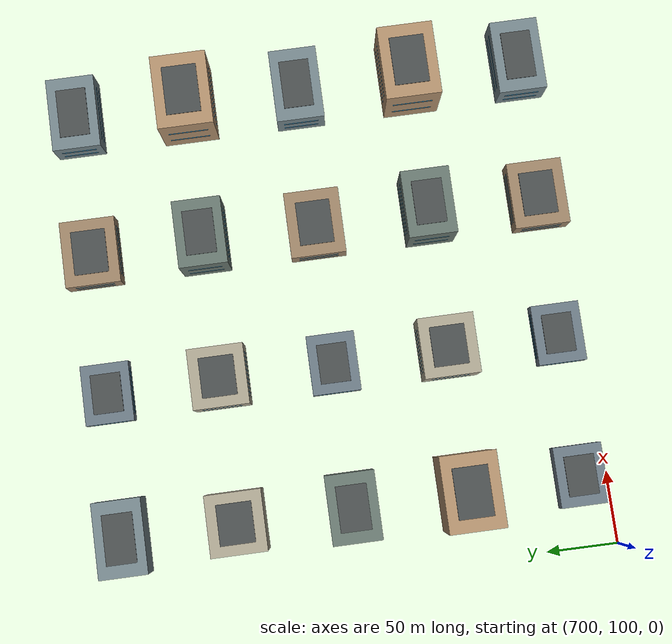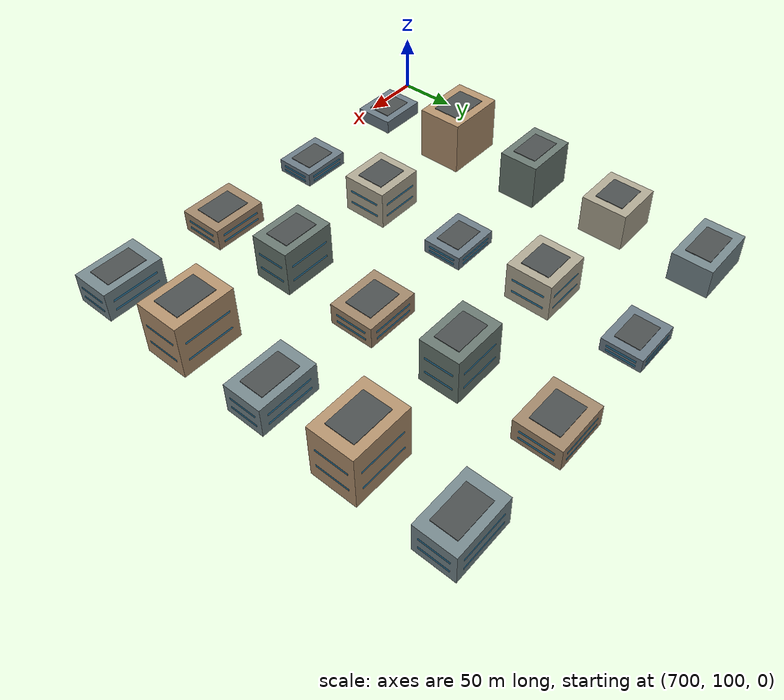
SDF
<sdf version="1.9">
 <world name="smart_city">
  <model name="chennai_block_066">
   <static>true</static>
   <pose>750 120 0 0 0 0</pose>
   <link name="building">
    <collision name="structure">
     <pose>0 0 6.0 0 0 0</pose>
     <geometry><box><size>42 34 12</size></box></geometry>
    </collision>
    <visual name="facade">
     <pose>0 0 6.0 0 0 0</pose>
     <geometry><box><size>42 34 12</size></box></geometry>
     <material><ambient>0.42 0.48 0.52 1</ambient><diffuse>0.42 0.48 0.52 1</diffuse></material>
    </visual>
    <visual name="roof">
     <pose>0 0 12.3 0 0 0</pose>
     <geometry><box><size>27.7 21.1 0.6</size></box></geometry>
     <material><ambient>0.29 0.31 0.31 1</ambient><diffuse>0.29 0.31 0.31 1</diffuse></material>
    </visual>
   </link>
  </model>
  <model name="chennai_block_077">
   <static>true</static>
   <pose>750 200 0 0 0 0</pose>
   <link name="building">
    <collision name="structure">
     <pose>0 0 23.5 0 0 0</pose>
     <geometry><box><size>52 39 47</size></box></geometry>
    </collision>
    <visual name="facade">
     <pose>0 0 23.5 0 0 0</pose>
     <geometry><box><size>52 39 47</size></box></geometry>
     <material><ambient>0.70 0.57 0.43 1</ambient><diffuse>0.70 0.57 0.43 1</diffuse></material>
    </visual>
    <visual name="roof">
     <pose>0 0 47.3 0 0 0</pose>
     <geometry><box><size>34.3 24.2 0.6</size></box></geometry>
     <material><ambient>0.29 0.31 0.31 1</ambient><diffuse>0.29 0.31 0.31 1</diffuse></material>
    </visual>
   </link>
  </model>
  <model name="chennai_block_088">
   <static>true</static>
   <pose>750 280 0 0 0 0</pose>
   <link name="building">
    <collision name="structure">
     <pose>0 0 20.0 0 0 0</pose>
     <geometry><box><size>47 34 40</size></box></geometry>
    </collision>
    <visual name="facade">
     <pose>0 0 20.0 0 0 0</pose>
     <geometry><box><size>47 34 40</size></box></geometry>
     <material><ambient>0.41 0.47 0.44 1</ambient><diffuse>0.41 0.47 0.44 1</diffuse></material>
    </visual>
    <visual name="roof">
     <pose>0 0 40.3 0 0 0</pose>
     <geometry><box><size>31.0 21.1 0.6</size></box></geometry>
     <material><ambient>0.29 0.31 0.31 1</ambient><diffuse>0.29 0.31 0.31 1</diffuse></material>
    </visual>
   </link>
  </model>
  <model name="chennai_block_099">
   <static>true</static>
   <pose>750 360 0 0 0 0</pose>
   <link name="building">
    <collision name="structure">
     <pose>0 0 16.5 0 0 0</pose>
     <geometry><box><size>42 39 33</size></box></geometry>
    </collision>
    <visual name="facade">
     <pose>0 0 16.5 0 0 0</pose>
     <geometry><box><size>42 39 33</size></box></geometry>
     <material><ambient>0.68 0.65 0.57 1</ambient><diffuse>0.68 0.65 0.57 1</diffuse></material>
    </visual>
    <visual name="roof">
     <pose>0 0 33.3 0 0 0</pose>
     <geometry><box><size>27.7 24.2 0.6</size></box></geometry>
     <material><ambient>0.29 0.31 0.31 1</ambient><diffuse>0.29 0.31 0.31 1</diffuse></material>
    </visual>
   </link>
  </model>
  <model name="chennai_block_110">
   <static>true</static>
   <pose>750 440 0 0 0 0</pose>
   <link name="building">
    <collision name="structure">
     <pose>0 0 13.0 0 0 0</pose>
     <geometry><box><size>52 34 26</size></box></geometry>
    </collision>
    <visual name="facade">
     <pose>0 0 13.0 0 0 0</pose>
     <geometry><box><size>52 34 26</size></box></geometry>
     <material><ambient>0.46 0.53 0.55 1</ambient><diffuse>0.46 0.53 0.55 1</diffuse></material>
    </visual>
    <visual name="roof">
     <pose>0 0 26.3 0 0 0</pose>
     <geometry><box><size>34.3 21.1 0.6</size></box></geometry>
     <material><ambient>0.29 0.31 0.31 1</ambient><diffuse>0.29 0.31 0.31 1</diffuse></material>
    </visual>
   </link>
  </model>
  <model name="chennai_block_126">
   <static>true</static>
   <pose>850 120 0 0 0 0</pose>
   <link name="building">
    <collision name="structure">
     <pose>0 0 6.0 0 0 0</pose>
     <geometry><box><size>42 34 12</size></box></geometry>
    </collision>
    <visual name="facade">
     <pose>0 0 6.0 0 0 0</pose>
     <geometry><box><size>42 34 12</size></box></geometry>
     <material><ambient>0.42 0.48 0.52 1</ambient><diffuse>0.42 0.48 0.52 1</diffuse></material>
    </visual>
    <visual name="window_band_y_3_-1">
     <pose>0 -17.04 3.36 0 0 0</pose>
     <geometry><box><size>31.9 0.06 1.8</size></box></geometry>
     <material><ambient>0.20 0.52 0.68 1</ambient><diffuse>0.20 0.52 0.68 1</diffuse></material>
    </visual>
    <visual name="window_band_x_3_-1">
     <pose>-21.04 0 3.36 0 0 0</pose>
     <geometry><box><size>0.06 24.5 1.8</size></box></geometry>
     <material><ambient>0.20 0.52 0.68 1</ambient><diffuse>0.20 0.52 0.68 1</diffuse></material>
    </visual>
    <visual name="window_band_y_3_1">
     <pose>0 17.04 3.36 0 0 0</pose>
     <geometry><box><size>31.9 0.06 1.8</size></box></geometry>
     <material><ambient>0.20 0.52 0.68 1</ambient><diffuse>0.20 0.52 0.68 1</diffuse></material>
    </visual>
    <visual name="window_band_x_3_1">
     <pose>21.04 0 3.36 0 0 0</pose>
     <geometry><box><size>0.06 24.5 1.8</size></box></geometry>
     <material><ambient>0.20 0.52 0.68 1</ambient><diffuse>0.20 0.52 0.68 1</diffuse></material>
    </visual>
    <visual name="window_band_y_7_-1">
     <pose>0 -17.04 7.44 0 0 0</pose>
     <geometry><box><size>31.9 0.06 1.8</size></box></geometry>
     <material><ambient>0.20 0.52 0.68 1</ambient><diffuse>0.20 0.52 0.68 1</diffuse></material>
    </visual>
    <visual name="window_band_x_7_-1">
     <pose>-21.04 0 7.44 0 0 0</pose>
     <geometry><box><size>0.06 24.5 1.8</size></box></geometry>
     <material><ambient>0.20 0.52 0.68 1</ambient><diffuse>0.20 0.52 0.68 1</diffuse></material>
    </visual>
    <visual name="window_band_y_7_1">
     <pose>0 17.04 7.44 0 0 0</pose>
     <geometry><box><size>31.9 0.06 1.8</size></box></geometry>
     <material><ambient>0.20 0.52 0.68 1</ambient><diffuse>0.20 0.52 0.68 1</diffuse></material>
    </visual>
    <visual name="window_band_x_7_1">
     <pose>21.04 0 7.44 0 0 0</pose>
     <geometry><box><size>0.06 24.5 1.8</size></box></geometry>
     <material><ambient>0.20 0.52 0.68 1</ambient><diffuse>0.20 0.52 0.68 1</diffuse></material>
    </visual>
    <visual name="roof">
     <pose>0 0 12.3 0 0 0</pose>
     <geometry><box><size>27.7 21.1 0.6</size></box></geometry>
     <material><ambient>0.29 0.31 0.31 1</ambient><diffuse>0.29 0.31 0.31 1</diffuse></material>
    </visual>
   </link>
  </model>
  <model name="chennai_block_127">
   <static>true</static>
   <pose>950 120 0 0 0 0</pose>
   <link name="building">
    <collision name="structure">
     <pose>0 0 9.5 0 0 0</pose>
     <geometry><box><size>47 39 19</size></box></geometry>
    </collision>
    <visual name="facade">
     <pose>0 0 9.5 0 0 0</pose>
     <geometry><box><size>47 39 19</size></box></geometry>
     <material><ambient>0.62 0.52 0.41 1</ambient><diffuse>0.62 0.52 0.41 1</diffuse></material>
    </visual>
    <visual name="window_band_y_5_-1">
     <pose>0 -19.54 5.32 0 0 0</pose>
     <geometry><box><size>35.7 0.06 1.8</size></box></geometry>
     <material><ambient>0.20 0.52 0.68 1</ambient><diffuse>0.20 0.52 0.68 1</diffuse></material>
    </visual>
    <visual name="window_band_x_5_-1">
     <pose>-23.54 0 5.32 0 0 0</pose>
     <geometry><box><size>0.06 28.1 1.8</size></box></geometry>
     <material><ambient>0.20 0.52 0.68 1</ambient><diffuse>0.20 0.52 0.68 1</diffuse></material>
    </visual>
    <visual name="window_band_y_5_1">
     <pose>0 19.54 5.32 0 0 0</pose>
     <geometry><box><size>35.7 0.06 1.8</size></box></geometry>
     <material><ambient>0.20 0.52 0.68 1</ambient><diffuse>0.20 0.52 0.68 1</diffuse></material>
    </visual>
    <visual name="window_band_x_5_1">
     <pose>23.54 0 5.32 0 0 0</pose>
     <geometry><box><size>0.06 28.1 1.8</size></box></geometry>
     <material><ambient>0.20 0.52 0.68 1</ambient><diffuse>0.20 0.52 0.68 1</diffuse></material>
    </visual>
    <visual name="window_band_y_11_-1">
     <pose>0 -19.54 11.78 0 0 0</pose>
     <geometry><box><size>35.7 0.06 1.8</size></box></geometry>
     <material><ambient>0.20 0.52 0.68 1</ambient><diffuse>0.20 0.52 0.68 1</diffuse></material>
    </visual>
    <visual name="window_band_x_11_-1">
     <pose>-23.54 0 11.78 0 0 0</pose>
     <geometry><box><size>0.06 28.1 1.8</size></box></geometry>
     <material><ambient>0.20 0.52 0.68 1</ambient><diffuse>0.20 0.52 0.68 1</diffuse></material>
    </visual>
    <visual name="window_band_y_11_1">
     <pose>0 19.54 11.78 0 0 0</pose>
     <geometry><box><size>35.7 0.06 1.8</size></box></geometry>
     <material><ambient>0.20 0.52 0.68 1</ambient><diffuse>0.20 0.52 0.68 1</diffuse></material>
    </visual>
    <visual name="window_band_x_11_1">
     <pose>23.54 0 11.78 0 0 0</pose>
     <geometry><box><size>0.06 28.1 1.8</size></box></geometry>
     <material><ambient>0.20 0.52 0.68 1</ambient><diffuse>0.20 0.52 0.68 1</diffuse></material>
    </visual>
    <visual name="roof">
     <pose>0 0 19.3 0 0 0</pose>
     <geometry><box><size>31.0 24.2 0.6</size></box></geometry>
     <material><ambient>0.29 0.31 0.31 1</ambient><diffuse>0.29 0.31 0.31 1</diffuse></material>
    </visual>
   </link>
  </model>
  <model name="chennai_block_128">
   <static>true</static>
   <pose>1050 120 0 0 0 0</pose>
   <link name="building">
    <collision name="structure">
     <pose>0 0 13.0 0 0 0</pose>
     <geometry><box><size>52 34 26</size></box></geometry>
    </collision>
    <visual name="facade">
     <pose>0 0 13.0 0 0 0</pose>
     <geometry><box><size>52 34 26</size></box></geometry>
     <material><ambient>0.46 0.53 0.55 1</ambient><diffuse>0.46 0.53 0.55 1</diffuse></material>
    </visual>
    <visual name="window_band_y_7_-1">
     <pose>0 -17.04 7.28 0 0 0</pose>
     <geometry><box><size>39.5 0.06 1.8</size></box></geometry>
     <material><ambient>0.20 0.52 0.68 1</ambient><diffuse>0.20 0.52 0.68 1</diffuse></material>
    </visual>
    <visual name="window_band_x_7_-1">
     <pose>-26.04 0 7.28 0 0 0</pose>
     <geometry><box><size>0.06 24.5 1.8</size></box></geometry>
     <material><ambient>0.20 0.52 0.68 1</ambient><diffuse>0.20 0.52 0.68 1</diffuse></material>
    </visual>
    <visual name="window_band_y_7_1">
     <pose>0 17.04 7.28 0 0 0</pose>
     <geometry><box><size>39.5 0.06 1.8</size></box></geometry>
     <material><ambient>0.20 0.52 0.68 1</ambient><diffuse>0.20 0.52 0.68 1</diffuse></material>
    </visual>
    <visual name="window_band_x_7_1">
     <pose>26.04 0 7.28 0 0 0</pose>
     <geometry><box><size>0.06 24.5 1.8</size></box></geometry>
     <material><ambient>0.20 0.52 0.68 1</ambient><diffuse>0.20 0.52 0.68 1</diffuse></material>
    </visual>
    <visual name="window_band_y_16_-1">
     <pose>0 -17.04 16.12 0 0 0</pose>
     <geometry><box><size>39.5 0.06 1.8</size></box></geometry>
     <material><ambient>0.20 0.52 0.68 1</ambient><diffuse>0.20 0.52 0.68 1</diffuse></material>
    </visual>
    <visual name="window_band_x_16_-1">
     <pose>-26.04 0 16.12 0 0 0</pose>
     <geometry><box><size>0.06 24.5 1.8</size></box></geometry>
     <material><ambient>0.20 0.52 0.68 1</ambient><diffuse>0.20 0.52 0.68 1</diffuse></material>
    </visual>
    <visual name="window_band_y_16_1">
     <pose>0 17.04 16.12 0 0 0</pose>
     <geometry><box><size>39.5 0.06 1.8</size></box></geometry>
     <material><ambient>0.20 0.52 0.68 1</ambient><diffuse>0.20 0.52 0.68 1</diffuse></material>
    </visual>
    <visual name="window_band_x_16_1">
     <pose>26.04 0 16.12 0 0 0</pose>
     <geometry><box><size>0.06 24.5 1.8</size></box></geometry>
     <material><ambient>0.20 0.52 0.68 1</ambient><diffuse>0.20 0.52 0.68 1</diffuse></material>
    </visual>
    <visual name="roof">
     <pose>0 0 26.3 0 0 0</pose>
     <geometry><box><size>34.3 21.1 0.6</size></box></geometry>
     <material><ambient>0.29 0.31 0.31 1</ambient><diffuse>0.29 0.31 0.31 1</diffuse></material>
    </visual>
   </link>
  </model>
  <model name="chennai_block_129">
   <static>true</static>
   <pose>850 200 0 0 0 0</pose>
   <link name="building">
    <collision name="structure">
     <pose>0 0 16.5 0 0 0</pose>
     <geometry><box><size>42 39 33</size></box></geometry>
    </collision>
    <visual name="facade">
     <pose>0 0 16.5 0 0 0</pose>
     <geometry><box><size>42 39 33</size></box></geometry>
     <material><ambient>0.68 0.65 0.57 1</ambient><diffuse>0.68 0.65 0.57 1</diffuse></material>
    </visual>
    <visual name="window_band_y_9_-1">
     <pose>0 -19.54 9.24 0 0 0</pose>
     <geometry><box><size>31.9 0.06 1.8</size></box></geometry>
     <material><ambient>0.20 0.52 0.68 1</ambient><diffuse>0.20 0.52 0.68 1</diffuse></material>
    </visual>
    <visual name="window_band_x_9_-1">
     <pose>-21.04 0 9.24 0 0 0</pose>
     <geometry><box><size>0.06 28.1 1.8</size></box></geometry>
     <material><ambient>0.20 0.52 0.68 1</ambient><diffuse>0.20 0.52 0.68 1</diffuse></material>
    </visual>
    <visual name="window_band_y_9_1">
     <pose>0 19.54 9.24 0 0 0</pose>
     <geometry><box><size>31.9 0.06 1.8</size></box></geometry>
     <material><ambient>0.20 0.52 0.68 1</ambient><diffuse>0.20 0.52 0.68 1</diffuse></material>
    </visual>
    <visual name="window_band_x_9_1">
     <pose>21.04 0 9.24 0 0 0</pose>
     <geometry><box><size>0.06 28.1 1.8</size></box></geometry>
     <material><ambient>0.20 0.52 0.68 1</ambient><diffuse>0.20 0.52 0.68 1</diffuse></material>
    </visual>
    <visual name="window_band_y_20_-1">
     <pose>0 -19.54 20.46 0 0 0</pose>
     <geometry><box><size>31.9 0.06 1.8</size></box></geometry>
     <material><ambient>0.20 0.52 0.68 1</ambient><diffuse>0.20 0.52 0.68 1</diffuse></material>
    </visual>
    <visual name="window_band_x_20_-1">
     <pose>-21.04 0 20.46 0 0 0</pose>
     <geometry><box><size>0.06 28.1 1.8</size></box></geometry>
     <material><ambient>0.20 0.52 0.68 1</ambient><diffuse>0.20 0.52 0.68 1</diffuse></material>
    </visual>
    <visual name="window_band_y_20_1">
     <pose>0 19.54 20.46 0 0 0</pose>
     <geometry><box><size>31.9 0.06 1.8</size></box></geometry>
     <material><ambient>0.20 0.52 0.68 1</ambient><diffuse>0.20 0.52 0.68 1</diffuse></material>
    </visual>
    <visual name="window_band_x_20_1">
     <pose>21.04 0 20.46 0 0 0</pose>
     <geometry><box><size>0.06 28.1 1.8</size></box></geometry>
     <material><ambient>0.20 0.52 0.68 1</ambient><diffuse>0.20 0.52 0.68 1</diffuse></material>
    </visual>
    <visual name="roof">
     <pose>0 0 33.3 0 0 0</pose>
     <geometry><box><size>27.7 24.2 0.6</size></box></geometry>
     <material><ambient>0.29 0.31 0.31 1</ambient><diffuse>0.29 0.31 0.31 1</diffuse></material>
    </visual>
   </link>
  </model>
  <model name="chennai_block_130">
   <static>true</static>
   <pose>950 200 0 0 0 0</pose>
   <link name="building">
    <collision name="structure">
     <pose>0 0 20.0 0 0 0</pose>
     <geometry><box><size>47 34 40</size></box></geometry>
    </collision>
    <visual name="facade">
     <pose>0 0 20.0 0 0 0</pose>
     <geometry><box><size>47 34 40</size></box></geometry>
     <material><ambient>0.41 0.47 0.44 1</ambient><diffuse>0.41 0.47 0.44 1</diffuse></material>
    </visual>
    <visual name="window_band_y_11_-1">
     <pose>0 -17.04 11.20 0 0 0</pose>
     <geometry><box><size>35.7 0.06 1.8</size></box></geometry>
     <material><ambient>0.20 0.52 0.68 1</ambient><diffuse>0.20 0.52 0.68 1</diffuse></material>
    </visual>
    <visual name="window_band_x_11_-1">
     <pose>-23.54 0 11.20 0 0 0</pose>
     <geometry><box><size>0.06 24.5 1.8</size></box></geometry>
     <material><ambient>0.20 0.52 0.68 1</ambient><diffuse>0.20 0.52 0.68 1</diffuse></material>
    </visual>
    <visual name="window_band_y_11_1">
     <pose>0 17.04 11.20 0 0 0</pose>
     <geometry><box><size>35.7 0.06 1.8</size></box></geometry>
     <material><ambient>0.20 0.52 0.68 1</ambient><diffuse>0.20 0.52 0.68 1</diffuse></material>
    </visual>
    <visual name="window_band_x_11_1">
     <pose>23.54 0 11.20 0 0 0</pose>
     <geometry><box><size>0.06 24.5 1.8</size></box></geometry>
     <material><ambient>0.20 0.52 0.68 1</ambient><diffuse>0.20 0.52 0.68 1</diffuse></material>
    </visual>
    <visual name="window_band_y_24_-1">
     <pose>0 -17.04 24.80 0 0 0</pose>
     <geometry><box><size>35.7 0.06 1.8</size></box></geometry>
     <material><ambient>0.20 0.52 0.68 1</ambient><diffuse>0.20 0.52 0.68 1</diffuse></material>
    </visual>
    <visual name="window_band_x_24_-1">
     <pose>-23.54 0 24.80 0 0 0</pose>
     <geometry><box><size>0.06 24.5 1.8</size></box></geometry>
     <material><ambient>0.20 0.52 0.68 1</ambient><diffuse>0.20 0.52 0.68 1</diffuse></material>
    </visual>
    <visual name="window_band_y_24_1">
     <pose>0 17.04 24.80 0 0 0</pose>
     <geometry><box><size>35.7 0.06 1.8</size></box></geometry>
     <material><ambient>0.20 0.52 0.68 1</ambient><diffuse>0.20 0.52 0.68 1</diffuse></material>
    </visual>
    <visual name="window_band_x_24_1">
     <pose>23.54 0 24.80 0 0 0</pose>
     <geometry><box><size>0.06 24.5 1.8</size></box></geometry>
     <material><ambient>0.20 0.52 0.68 1</ambient><diffuse>0.20 0.52 0.68 1</diffuse></material>
    </visual>
    <visual name="roof">
     <pose>0 0 40.3 0 0 0</pose>
     <geometry><box><size>31.0 21.1 0.6</size></box></geometry>
     <material><ambient>0.29 0.31 0.31 1</ambient><diffuse>0.29 0.31 0.31 1</diffuse></material>
    </visual>
   </link>
  </model>
  <model name="chennai_block_131">
   <static>true</static>
   <pose>1050 200 0 0 0 0</pose>
   <link name="building">
    <collision name="structure">
     <pose>0 0 23.5 0 0 0</pose>
     <geometry><box><size>52 39 47</size></box></geometry>
    </collision>
    <visual name="facade">
     <pose>0 0 23.5 0 0 0</pose>
     <geometry><box><size>52 39 47</size></box></geometry>
     <material><ambient>0.70 0.57 0.43 1</ambient><diffuse>0.70 0.57 0.43 1</diffuse></material>
    </visual>
    <visual name="window_band_y_13_-1">
     <pose>0 -19.54 13.16 0 0 0</pose>
     <geometry><box><size>39.5 0.06 1.8</size></box></geometry>
     <material><ambient>0.20 0.52 0.68 1</ambient><diffuse>0.20 0.52 0.68 1</diffuse></material>
    </visual>
    <visual name="window_band_x_13_-1">
     <pose>-26.04 0 13.16 0 0 0</pose>
     <geometry><box><size>0.06 28.1 1.8</size></box></geometry>
     <material><ambient>0.20 0.52 0.68 1</ambient><diffuse>0.20 0.52 0.68 1</diffuse></material>
    </visual>
    <visual name="window_band_y_13_1">
     <pose>0 19.54 13.16 0 0 0</pose>
     <geometry><box><size>39.5 0.06 1.8</size></box></geometry>
     <material><ambient>0.20 0.52 0.68 1</ambient><diffuse>0.20 0.52 0.68 1</diffuse></material>
    </visual>
    <visual name="window_band_x_13_1">
     <pose>26.04 0 13.16 0 0 0</pose>
     <geometry><box><size>0.06 28.1 1.8</size></box></geometry>
     <material><ambient>0.20 0.52 0.68 1</ambient><diffuse>0.20 0.52 0.68 1</diffuse></material>
    </visual>
    <visual name="window_band_y_29_-1">
     <pose>0 -19.54 29.14 0 0 0</pose>
     <geometry><box><size>39.5 0.06 1.8</size></box></geometry>
     <material><ambient>0.20 0.52 0.68 1</ambient><diffuse>0.20 0.52 0.68 1</diffuse></material>
    </visual>
    <visual name="window_band_x_29_-1">
     <pose>-26.04 0 29.14 0 0 0</pose>
     <geometry><box><size>0.06 28.1 1.8</size></box></geometry>
     <material><ambient>0.20 0.52 0.68 1</ambient><diffuse>0.20 0.52 0.68 1</diffuse></material>
    </visual>
    <visual name="window_band_y_29_1">
     <pose>0 19.54 29.14 0 0 0</pose>
     <geometry><box><size>39.5 0.06 1.8</size></box></geometry>
     <material><ambient>0.20 0.52 0.68 1</ambient><diffuse>0.20 0.52 0.68 1</diffuse></material>
    </visual>
    <visual name="window_band_x_29_1">
     <pose>26.04 0 29.14 0 0 0</pose>
     <geometry><box><size>0.06 28.1 1.8</size></box></geometry>
     <material><ambient>0.20 0.52 0.68 1</ambient><diffuse>0.20 0.52 0.68 1</diffuse></material>
    </visual>
    <visual name="roof">
     <pose>0 0 47.3 0 0 0</pose>
     <geometry><box><size>34.3 24.2 0.6</size></box></geometry>
     <material><ambient>0.29 0.31 0.31 1</ambient><diffuse>0.29 0.31 0.31 1</diffuse></material>
    </visual>
   </link>
  </model>
  <model name="chennai_block_132">
   <static>true</static>
   <pose>850 280 0 0 0 0</pose>
   <link name="building">
    <collision name="structure">
     <pose>0 0 6.0 0 0 0</pose>
     <geometry><box><size>42 34 12</size></box></geometry>
    </collision>
    <visual name="facade">
     <pose>0 0 6.0 0 0 0</pose>
     <geometry><box><size>42 34 12</size></box></geometry>
     <material><ambient>0.42 0.48 0.52 1</ambient><diffuse>0.42 0.48 0.52 1</diffuse></material>
    </visual>
    <visual name="window_band_y_3_-1">
     <pose>0 -17.04 3.36 0 0 0</pose>
     <geometry><box><size>31.9 0.06 1.8</size></box></geometry>
     <material><ambient>0.20 0.52 0.68 1</ambient><diffuse>0.20 0.52 0.68 1</diffuse></material>
    </visual>
    <visual name="window_band_x_3_-1">
     <pose>-21.04 0 3.36 0 0 0</pose>
     <geometry><box><size>0.06 24.5 1.8</size></box></geometry>
     <material><ambient>0.20 0.52 0.68 1</ambient><diffuse>0.20 0.52 0.68 1</diffuse></material>
    </visual>
    <visual name="window_band_y_3_1">
     <pose>0 17.04 3.36 0 0 0</pose>
     <geometry><box><size>31.9 0.06 1.8</size></box></geometry>
     <material><ambient>0.20 0.52 0.68 1</ambient><diffuse>0.20 0.52 0.68 1</diffuse></material>
    </visual>
    <visual name="window_band_x_3_1">
     <pose>21.04 0 3.36 0 0 0</pose>
     <geometry><box><size>0.06 24.5 1.8</size></box></geometry>
     <material><ambient>0.20 0.52 0.68 1</ambient><diffuse>0.20 0.52 0.68 1</diffuse></material>
    </visual>
    <visual name="window_band_y_7_-1">
     <pose>0 -17.04 7.44 0 0 0</pose>
     <geometry><box><size>31.9 0.06 1.8</size></box></geometry>
     <material><ambient>0.20 0.52 0.68 1</ambient><diffuse>0.20 0.52 0.68 1</diffuse></material>
    </visual>
    <visual name="window_band_x_7_-1">
     <pose>-21.04 0 7.44 0 0 0</pose>
     <geometry><box><size>0.06 24.5 1.8</size></box></geometry>
     <material><ambient>0.20 0.52 0.68 1</ambient><diffuse>0.20 0.52 0.68 1</diffuse></material>
    </visual>
    <visual name="window_band_y_7_1">
     <pose>0 17.04 7.44 0 0 0</pose>
     <geometry><box><size>31.9 0.06 1.8</size></box></geometry>
     <material><ambient>0.20 0.52 0.68 1</ambient><diffuse>0.20 0.52 0.68 1</diffuse></material>
    </visual>
    <visual name="window_band_x_7_1">
     <pose>21.04 0 7.44 0 0 0</pose>
     <geometry><box><size>0.06 24.5 1.8</size></box></geometry>
     <material><ambient>0.20 0.52 0.68 1</ambient><diffuse>0.20 0.52 0.68 1</diffuse></material>
    </visual>
    <visual name="roof">
     <pose>0 0 12.3 0 0 0</pose>
     <geometry><box><size>27.7 21.1 0.6</size></box></geometry>
     <material><ambient>0.29 0.31 0.31 1</ambient><diffuse>0.29 0.31 0.31 1</diffuse></material>
    </visual>
   </link>
  </model>
  <model name="chennai_block_133">
   <static>true</static>
   <pose>950 280 0 0 0 0</pose>
   <link name="building">
    <collision name="structure">
     <pose>0 0 9.5 0 0 0</pose>
     <geometry><box><size>47 39 19</size></box></geometry>
    </collision>
    <visual name="facade">
     <pose>0 0 9.5 0 0 0</pose>
     <geometry><box><size>47 39 19</size></box></geometry>
     <material><ambient>0.62 0.52 0.41 1</ambient><diffuse>0.62 0.52 0.41 1</diffuse></material>
    </visual>
    <visual name="window_band_y_5_-1">
     <pose>0 -19.54 5.32 0 0 0</pose>
     <geometry><box><size>35.7 0.06 1.8</size></box></geometry>
     <material><ambient>0.20 0.52 0.68 1</ambient><diffuse>0.20 0.52 0.68 1</diffuse></material>
    </visual>
    <visual name="window_band_x_5_-1">
     <pose>-23.54 0 5.32 0 0 0</pose>
     <geometry><box><size>0.06 28.1 1.8</size></box></geometry>
     <material><ambient>0.20 0.52 0.68 1</ambient><diffuse>0.20 0.52 0.68 1</diffuse></material>
    </visual>
    <visual name="window_band_y_5_1">
     <pose>0 19.54 5.32 0 0 0</pose>
     <geometry><box><size>35.7 0.06 1.8</size></box></geometry>
     <material><ambient>0.20 0.52 0.68 1</ambient><diffuse>0.20 0.52 0.68 1</diffuse></material>
    </visual>
    <visual name="window_band_x_5_1">
     <pose>23.54 0 5.32 0 0 0</pose>
     <geometry><box><size>0.06 28.1 1.8</size></box></geometry>
     <material><ambient>0.20 0.52 0.68 1</ambient><diffuse>0.20 0.52 0.68 1</diffuse></material>
    </visual>
    <visual name="window_band_y_11_-1">
     <pose>0 -19.54 11.78 0 0 0</pose>
     <geometry><box><size>35.7 0.06 1.8</size></box></geometry>
     <material><ambient>0.20 0.52 0.68 1</ambient><diffuse>0.20 0.52 0.68 1</diffuse></material>
    </visual>
    <visual name="window_band_x_11_-1">
     <pose>-23.54 0 11.78 0 0 0</pose>
     <geometry><box><size>0.06 28.1 1.8</size></box></geometry>
     <material><ambient>0.20 0.52 0.68 1</ambient><diffuse>0.20 0.52 0.68 1</diffuse></material>
    </visual>
    <visual name="window_band_y_11_1">
     <pose>0 19.54 11.78 0 0 0</pose>
     <geometry><box><size>35.7 0.06 1.8</size></box></geometry>
     <material><ambient>0.20 0.52 0.68 1</ambient><diffuse>0.20 0.52 0.68 1</diffuse></material>
    </visual>
    <visual name="window_band_x_11_1">
     <pose>23.54 0 11.78 0 0 0</pose>
     <geometry><box><size>0.06 28.1 1.8</size></box></geometry>
     <material><ambient>0.20 0.52 0.68 1</ambient><diffuse>0.20 0.52 0.68 1</diffuse></material>
    </visual>
    <visual name="roof">
     <pose>0 0 19.3 0 0 0</pose>
     <geometry><box><size>31.0 24.2 0.6</size></box></geometry>
     <material><ambient>0.29 0.31 0.31 1</ambient><diffuse>0.29 0.31 0.31 1</diffuse></material>
    </visual>
   </link>
  </model>
  <model name="chennai_block_134">
   <static>true</static>
   <pose>1050 280 0 0 0 0</pose>
   <link name="building">
    <collision name="structure">
     <pose>0 0 13.0 0 0 0</pose>
     <geometry><box><size>52 34 26</size></box></geometry>
    </collision>
    <visual name="facade">
     <pose>0 0 13.0 0 0 0</pose>
     <geometry><box><size>52 34 26</size></box></geometry>
     <material><ambient>0.46 0.53 0.55 1</ambient><diffuse>0.46 0.53 0.55 1</diffuse></material>
    </visual>
    <visual name="window_band_y_7_-1">
     <pose>0 -17.04 7.28 0 0 0</pose>
     <geometry><box><size>39.5 0.06 1.8</size></box></geometry>
     <material><ambient>0.20 0.52 0.68 1</ambient><diffuse>0.20 0.52 0.68 1</diffuse></material>
    </visual>
    <visual name="window_band_x_7_-1">
     <pose>-26.04 0 7.28 0 0 0</pose>
     <geometry><box><size>0.06 24.5 1.8</size></box></geometry>
     <material><ambient>0.20 0.52 0.68 1</ambient><diffuse>0.20 0.52 0.68 1</diffuse></material>
    </visual>
    <visual name="window_band_y_7_1">
     <pose>0 17.04 7.28 0 0 0</pose>
     <geometry><box><size>39.5 0.06 1.8</size></box></geometry>
     <material><ambient>0.20 0.52 0.68 1</ambient><diffuse>0.20 0.52 0.68 1</diffuse></material>
    </visual>
    <visual name="window_band_x_7_1">
     <pose>26.04 0 7.28 0 0 0</pose>
     <geometry><box><size>0.06 24.5 1.8</size></box></geometry>
     <material><ambient>0.20 0.52 0.68 1</ambient><diffuse>0.20 0.52 0.68 1</diffuse></material>
    </visual>
    <visual name="window_band_y_16_-1">
     <pose>0 -17.04 16.12 0 0 0</pose>
     <geometry><box><size>39.5 0.06 1.8</size></box></geometry>
     <material><ambient>0.20 0.52 0.68 1</ambient><diffuse>0.20 0.52 0.68 1</diffuse></material>
    </visual>
    <visual name="window_band_x_16_-1">
     <pose>-26.04 0 16.12 0 0 0</pose>
     <geometry><box><size>0.06 24.5 1.8</size></box></geometry>
     <material><ambient>0.20 0.52 0.68 1</ambient><diffuse>0.20 0.52 0.68 1</diffuse></material>
    </visual>
    <visual name="window_band_y_16_1">
     <pose>0 17.04 16.12 0 0 0</pose>
     <geometry><box><size>39.5 0.06 1.8</size></box></geometry>
     <material><ambient>0.20 0.52 0.68 1</ambient><diffuse>0.20 0.52 0.68 1</diffuse></material>
    </visual>
    <visual name="window_band_x_16_1">
     <pose>26.04 0 16.12 0 0 0</pose>
     <geometry><box><size>0.06 24.5 1.8</size></box></geometry>
     <material><ambient>0.20 0.52 0.68 1</ambient><diffuse>0.20 0.52 0.68 1</diffuse></material>
    </visual>
    <visual name="roof">
     <pose>0 0 26.3 0 0 0</pose>
     <geometry><box><size>34.3 21.1 0.6</size></box></geometry>
     <material><ambient>0.29 0.31 0.31 1</ambient><diffuse>0.29 0.31 0.31 1</diffuse></material>
    </visual>
   </link>
  </model>
  <model name="chennai_block_135">
   <static>true</static>
   <pose>850 360 0 0 0 0</pose>
   <link name="building">
    <collision name="structure">
     <pose>0 0 16.5 0 0 0</pose>
     <geometry><box><size>42 39 33</size></box></geometry>
    </collision>
    <visual name="facade">
     <pose>0 0 16.5 0 0 0</pose>
     <geometry><box><size>42 39 33</size></box></geometry>
     <material><ambient>0.68 0.65 0.57 1</ambient><diffuse>0.68 0.65 0.57 1</diffuse></material>
    </visual>
    <visual name="window_band_y_9_-1">
     <pose>0 -19.54 9.24 0 0 0</pose>
     <geometry><box><size>31.9 0.06 1.8</size></box></geometry>
     <material><ambient>0.20 0.52 0.68 1</ambient><diffuse>0.20 0.52 0.68 1</diffuse></material>
    </visual>
    <visual name="window_band_x_9_-1">
     <pose>-21.04 0 9.24 0 0 0</pose>
     <geometry><box><size>0.06 28.1 1.8</size></box></geometry>
     <material><ambient>0.20 0.52 0.68 1</ambient><diffuse>0.20 0.52 0.68 1</diffuse></material>
    </visual>
    <visual name="window_band_y_9_1">
     <pose>0 19.54 9.24 0 0 0</pose>
     <geometry><box><size>31.9 0.06 1.8</size></box></geometry>
     <material><ambient>0.20 0.52 0.68 1</ambient><diffuse>0.20 0.52 0.68 1</diffuse></material>
    </visual>
    <visual name="window_band_x_9_1">
     <pose>21.04 0 9.24 0 0 0</pose>
     <geometry><box><size>0.06 28.1 1.8</size></box></geometry>
     <material><ambient>0.20 0.52 0.68 1</ambient><diffuse>0.20 0.52 0.68 1</diffuse></material>
    </visual>
    <visual name="window_band_y_20_-1">
     <pose>0 -19.54 20.46 0 0 0</pose>
     <geometry><box><size>31.9 0.06 1.8</size></box></geometry>
     <material><ambient>0.20 0.52 0.68 1</ambient><diffuse>0.20 0.52 0.68 1</diffuse></material>
    </visual>
    <visual name="window_band_x_20_-1">
     <pose>-21.04 0 20.46 0 0 0</pose>
     <geometry><box><size>0.06 28.1 1.8</size></box></geometry>
     <material><ambient>0.20 0.52 0.68 1</ambient><diffuse>0.20 0.52 0.68 1</diffuse></material>
    </visual>
    <visual name="window_band_y_20_1">
     <pose>0 19.54 20.46 0 0 0</pose>
     <geometry><box><size>31.9 0.06 1.8</size></box></geometry>
     <material><ambient>0.20 0.52 0.68 1</ambient><diffuse>0.20 0.52 0.68 1</diffuse></material>
    </visual>
    <visual name="window_band_x_20_1">
     <pose>21.04 0 20.46 0 0 0</pose>
     <geometry><box><size>0.06 28.1 1.8</size></box></geometry>
     <material><ambient>0.20 0.52 0.68 1</ambient><diffuse>0.20 0.52 0.68 1</diffuse></material>
    </visual>
    <visual name="roof">
     <pose>0 0 33.3 0 0 0</pose>
     <geometry><box><size>27.7 24.2 0.6</size></box></geometry>
     <material><ambient>0.29 0.31 0.31 1</ambient><diffuse>0.29 0.31 0.31 1</diffuse></material>
    </visual>
   </link>
  </model>
  <model name="chennai_block_136">
   <static>true</static>
   <pose>950 360 0 0 0 0</pose>
   <link name="building">
    <collision name="structure">
     <pose>0 0 20.0 0 0 0</pose>
     <geometry><box><size>47 34 40</size></box></geometry>
    </collision>
    <visual name="facade">
     <pose>0 0 20.0 0 0 0</pose>
     <geometry><box><size>47 34 40</size></box></geometry>
     <material><ambient>0.41 0.47 0.44 1</ambient><diffuse>0.41 0.47 0.44 1</diffuse></material>
    </visual>
    <visual name="window_band_y_11_-1">
     <pose>0 -17.04 11.20 0 0 0</pose>
     <geometry><box><size>35.7 0.06 1.8</size></box></geometry>
     <material><ambient>0.20 0.52 0.68 1</ambient><diffuse>0.20 0.52 0.68 1</diffuse></material>
    </visual>
    <visual name="window_band_x_11_-1">
     <pose>-23.54 0 11.20 0 0 0</pose>
     <geometry><box><size>0.06 24.5 1.8</size></box></geometry>
     <material><ambient>0.20 0.52 0.68 1</ambient><diffuse>0.20 0.52 0.68 1</diffuse></material>
    </visual>
    <visual name="window_band_y_11_1">
     <pose>0 17.04 11.20 0 0 0</pose>
     <geometry><box><size>35.7 0.06 1.8</size></box></geometry>
     <material><ambient>0.20 0.52 0.68 1</ambient><diffuse>0.20 0.52 0.68 1</diffuse></material>
    </visual>
    <visual name="window_band_x_11_1">
     <pose>23.54 0 11.20 0 0 0</pose>
     <geometry><box><size>0.06 24.5 1.8</size></box></geometry>
     <material><ambient>0.20 0.52 0.68 1</ambient><diffuse>0.20 0.52 0.68 1</diffuse></material>
    </visual>
    <visual name="window_band_y_24_-1">
     <pose>0 -17.04 24.80 0 0 0</pose>
     <geometry><box><size>35.7 0.06 1.8</size></box></geometry>
     <material><ambient>0.20 0.52 0.68 1</ambient><diffuse>0.20 0.52 0.68 1</diffuse></material>
    </visual>
    <visual name="window_band_x_24_-1">
     <pose>-23.54 0 24.80 0 0 0</pose>
     <geometry><box><size>0.06 24.5 1.8</size></box></geometry>
     <material><ambient>0.20 0.52 0.68 1</ambient><diffuse>0.20 0.52 0.68 1</diffuse></material>
    </visual>
    <visual name="window_band_y_24_1">
     <pose>0 17.04 24.80 0 0 0</pose>
     <geometry><box><size>35.7 0.06 1.8</size></box></geometry>
     <material><ambient>0.20 0.52 0.68 1</ambient><diffuse>0.20 0.52 0.68 1</diffuse></material>
    </visual>
    <visual name="window_band_x_24_1">
     <pose>23.54 0 24.80 0 0 0</pose>
     <geometry><box><size>0.06 24.5 1.8</size></box></geometry>
     <material><ambient>0.20 0.52 0.68 1</ambient><diffuse>0.20 0.52 0.68 1</diffuse></material>
    </visual>
    <visual name="roof">
     <pose>0 0 40.3 0 0 0</pose>
     <geometry><box><size>31.0 21.1 0.6</size></box></geometry>
     <material><ambient>0.29 0.31 0.31 1</ambient><diffuse>0.29 0.31 0.31 1</diffuse></material>
    </visual>
   </link>
  </model>
  <model name="chennai_block_137">
   <static>true</static>
   <pose>1050 360 0 0 0 0</pose>
   <link name="building">
    <collision name="structure">
     <pose>0 0 23.5 0 0 0</pose>
     <geometry><box><size>52 39 47</size></box></geometry>
    </collision>
    <visual name="facade">
     <pose>0 0 23.5 0 0 0</pose>
     <geometry><box><size>52 39 47</size></box></geometry>
     <material><ambient>0.70 0.57 0.43 1</ambient><diffuse>0.70 0.57 0.43 1</diffuse></material>
    </visual>
    <visual name="window_band_y_13_-1">
     <pose>0 -19.54 13.16 0 0 0</pose>
     <geometry><box><size>39.5 0.06 1.8</size></box></geometry>
     <material><ambient>0.20 0.52 0.68 1</ambient><diffuse>0.20 0.52 0.68 1</diffuse></material>
    </visual>
    <visual name="window_band_x_13_-1">
     <pose>-26.04 0 13.16 0 0 0</pose>
     <geometry><box><size>0.06 28.1 1.8</size></box></geometry>
     <material><ambient>0.20 0.52 0.68 1</ambient><diffuse>0.20 0.52 0.68 1</diffuse></material>
    </visual>
    <visual name="window_band_y_13_1">
     <pose>0 19.54 13.16 0 0 0</pose>
     <geometry><box><size>39.5 0.06 1.8</size></box></geometry>
     <material><ambient>0.20 0.52 0.68 1</ambient><diffuse>0.20 0.52 0.68 1</diffuse></material>
    </visual>
    <visual name="window_band_x_13_1">
     <pose>26.04 0 13.16 0 0 0</pose>
     <geometry><box><size>0.06 28.1 1.8</size></box></geometry>
     <material><ambient>0.20 0.52 0.68 1</ambient><diffuse>0.20 0.52 0.68 1</diffuse></material>
    </visual>
    <visual name="window_band_y_29_-1">
     <pose>0 -19.54 29.14 0 0 0</pose>
     <geometry><box><size>39.5 0.06 1.8</size></box></geometry>
     <material><ambient>0.20 0.52 0.68 1</ambient><diffuse>0.20 0.52 0.68 1</diffuse></material>
    </visual>
    <visual name="window_band_x_29_-1">
     <pose>-26.04 0 29.14 0 0 0</pose>
     <geometry><box><size>0.06 28.1 1.8</size></box></geometry>
     <material><ambient>0.20 0.52 0.68 1</ambient><diffuse>0.20 0.52 0.68 1</diffuse></material>
    </visual>
    <visual name="window_band_y_29_1">
     <pose>0 19.54 29.14 0 0 0</pose>
     <geometry><box><size>39.5 0.06 1.8</size></box></geometry>
     <material><ambient>0.20 0.52 0.68 1</ambient><diffuse>0.20 0.52 0.68 1</diffuse></material>
    </visual>
    <visual name="window_band_x_29_1">
     <pose>26.04 0 29.14 0 0 0</pose>
     <geometry><box><size>0.06 28.1 1.8</size></box></geometry>
     <material><ambient>0.20 0.52 0.68 1</ambient><diffuse>0.20 0.52 0.68 1</diffuse></material>
    </visual>
    <visual name="roof">
     <pose>0 0 47.3 0 0 0</pose>
     <geometry><box><size>34.3 24.2 0.6</size></box></geometry>
     <material><ambient>0.29 0.31 0.31 1</ambient><diffuse>0.29 0.31 0.31 1</diffuse></material>
    </visual>
   </link>
  </model>
  <model name="chennai_block_138">
   <static>true</static>
   <pose>850 440 0 0 0 0</pose>
   <link name="building">
    <collision name="structure">
     <pose>0 0 6.0 0 0 0</pose>
     <geometry><box><size>42 34 12</size></box></geometry>
    </collision>
    <visual name="facade">
     <pose>0 0 6.0 0 0 0</pose>
     <geometry><box><size>42 34 12</size></box></geometry>
     <material><ambient>0.42 0.48 0.52 1</ambient><diffuse>0.42 0.48 0.52 1</diffuse></material>
    </visual>
    <visual name="window_band_y_3_-1">
     <pose>0 -17.04 3.36 0 0 0</pose>
     <geometry><box><size>31.9 0.06 1.8</size></box></geometry>
     <material><ambient>0.20 0.52 0.68 1</ambient><diffuse>0.20 0.52 0.68 1</diffuse></material>
    </visual>
    <visual name="window_band_x_3_-1">
     <pose>-21.04 0 3.36 0 0 0</pose>
     <geometry><box><size>0.06 24.5 1.8</size></box></geometry>
     <material><ambient>0.20 0.52 0.68 1</ambient><diffuse>0.20 0.52 0.68 1</diffuse></material>
    </visual>
    <visual name="window_band_y_3_1">
     <pose>0 17.04 3.36 0 0 0</pose>
     <geometry><box><size>31.9 0.06 1.8</size></box></geometry>
     <material><ambient>0.20 0.52 0.68 1</ambient><diffuse>0.20 0.52 0.68 1</diffuse></material>
    </visual>
    <visual name="window_band_x_3_1">
     <pose>21.04 0 3.36 0 0 0</pose>
     <geometry><box><size>0.06 24.5 1.8</size></box></geometry>
     <material><ambient>0.20 0.52 0.68 1</ambient><diffuse>0.20 0.52 0.68 1</diffuse></material>
    </visual>
    <visual name="window_band_y_7_-1">
     <pose>0 -17.04 7.44 0 0 0</pose>
     <geometry><box><size>31.9 0.06 1.8</size></box></geometry>
     <material><ambient>0.20 0.52 0.68 1</ambient><diffuse>0.20 0.52 0.68 1</diffuse></material>
    </visual>
    <visual name="window_band_x_7_-1">
     <pose>-21.04 0 7.44 0 0 0</pose>
     <geometry><box><size>0.06 24.5 1.8</size></box></geometry>
     <material><ambient>0.20 0.52 0.68 1</ambient><diffuse>0.20 0.52 0.68 1</diffuse></material>
    </visual>
    <visual name="window_band_y_7_1">
     <pose>0 17.04 7.44 0 0 0</pose>
     <geometry><box><size>31.9 0.06 1.8</size></box></geometry>
     <material><ambient>0.20 0.52 0.68 1</ambient><diffuse>0.20 0.52 0.68 1</diffuse></material>
    </visual>
    <visual name="window_band_x_7_1">
     <pose>21.04 0 7.44 0 0 0</pose>
     <geometry><box><size>0.06 24.5 1.8</size></box></geometry>
     <material><ambient>0.20 0.52 0.68 1</ambient><diffuse>0.20 0.52 0.68 1</diffuse></material>
    </visual>
    <visual name="roof">
     <pose>0 0 12.3 0 0 0</pose>
     <geometry><box><size>27.7 21.1 0.6</size></box></geometry>
     <material><ambient>0.29 0.31 0.31 1</ambient><diffuse>0.29 0.31 0.31 1</diffuse></material>
    </visual>
   </link>
  </model>
  <model name="chennai_block_139">
   <static>true</static>
   <pose>950 440 0 0 0 0</pose>
   <link name="building">
    <collision name="structure">
     <pose>0 0 9.5 0 0 0</pose>
     <geometry><box><size>47 39 19</size></box></geometry>
    </collision>
    <visual name="facade">
     <pose>0 0 9.5 0 0 0</pose>
     <geometry><box><size>47 39 19</size></box></geometry>
     <material><ambient>0.62 0.52 0.41 1</ambient><diffuse>0.62 0.52 0.41 1</diffuse></material>
    </visual>
    <visual name="window_band_y_5_-1">
     <pose>0 -19.54 5.32 0 0 0</pose>
     <geometry><box><size>35.7 0.06 1.8</size></box></geometry>
     <material><ambient>0.20 0.52 0.68 1</ambient><diffuse>0.20 0.52 0.68 1</diffuse></material>
    </visual>
    <visual name="window_band_x_5_-1">
     <pose>-23.54 0 5.32 0 0 0</pose>
     <geometry><box><size>0.06 28.1 1.8</size></box></geometry>
     <material><ambient>0.20 0.52 0.68 1</ambient><diffuse>0.20 0.52 0.68 1</diffuse></material>
    </visual>
    <visual name="window_band_y_5_1">
     <pose>0 19.54 5.32 0 0 0</pose>
     <geometry><box><size>35.7 0.06 1.8</size></box></geometry>
     <material><ambient>0.20 0.52 0.68 1</ambient><diffuse>0.20 0.52 0.68 1</diffuse></material>
    </visual>
    <visual name="window_band_x_5_1">
     <pose>23.54 0 5.32 0 0 0</pose>
     <geometry><box><size>0.06 28.1 1.8</size></box></geometry>
     <material><ambient>0.20 0.52 0.68 1</ambient><diffuse>0.20 0.52 0.68 1</diffuse></material>
    </visual>
    <visual name="window_band_y_11_-1">
     <pose>0 -19.54 11.78 0 0 0</pose>
     <geometry><box><size>35.7 0.06 1.8</size></box></geometry>
     <material><ambient>0.20 0.52 0.68 1</ambient><diffuse>0.20 0.52 0.68 1</diffuse></material>
    </visual>
    <visual name="window_band_x_11_-1">
     <pose>-23.54 0 11.78 0 0 0</pose>
     <geometry><box><size>0.06 28.1 1.8</size></box></geometry>
     <material><ambient>0.20 0.52 0.68 1</ambient><diffuse>0.20 0.52 0.68 1</diffuse></material>
    </visual>
    <visual name="window_band_y_11_1">
     <pose>0 19.54 11.78 0 0 0</pose>
     <geometry><box><size>35.7 0.06 1.8</size></box></geometry>
     <material><ambient>0.20 0.52 0.68 1</ambient><diffuse>0.20 0.52 0.68 1</diffuse></material>
    </visual>
    <visual name="window_band_x_11_1">
     <pose>23.54 0 11.78 0 0 0</pose>
     <geometry><box><size>0.06 28.1 1.8</size></box></geometry>
     <material><ambient>0.20 0.52 0.68 1</ambient><diffuse>0.20 0.52 0.68 1</diffuse></material>
    </visual>
    <visual name="roof">
     <pose>0 0 19.3 0 0 0</pose>
     <geometry><box><size>31.0 24.2 0.6</size></box></geometry>
     <material><ambient>0.29 0.31 0.31 1</ambient><diffuse>0.29 0.31 0.31 1</diffuse></material>
    </visual>
   </link>
  </model>
  <model name="chennai_block_140">
   <static>true</static>
   <pose>1050 440 0 0 0 0</pose>
   <link name="building">
    <collision name="structure">
     <pose>0 0 13.0 0 0 0</pose>
     <geometry><box><size>52 34 26</size></box></geometry>
    </collision>
    <visual name="facade">
     <pose>0 0 13.0 0 0 0</pose>
     <geometry><box><size>52 34 26</size></box></geometry>
     <material><ambient>0.46 0.53 0.55 1</ambient><diffuse>0.46 0.53 0.55 1</diffuse></material>
    </visual>
    <visual name="window_band_y_7_-1">
     <pose>0 -17.04 7.28 0 0 0</pose>
     <geometry><box><size>39.5 0.06 1.8</size></box></geometry>
     <material><ambient>0.20 0.52 0.68 1</ambient><diffuse>0.20 0.52 0.68 1</diffuse></material>
    </visual>
    <visual name="window_band_x_7_-1">
     <pose>-26.04 0 7.28 0 0 0</pose>
     <geometry><box><size>0.06 24.5 1.8</size></box></geometry>
     <material><ambient>0.20 0.52 0.68 1</ambient><diffuse>0.20 0.52 0.68 1</diffuse></material>
    </visual>
    <visual name="window_band_y_7_1">
     <pose>0 17.04 7.28 0 0 0</pose>
     <geometry><box><size>39.5 0.06 1.8</size></box></geometry>
     <material><ambient>0.20 0.52 0.68 1</ambient><diffuse>0.20 0.52 0.68 1</diffuse></material>
    </visual>
    <visual name="window_band_x_7_1">
     <pose>26.04 0 7.28 0 0 0</pose>
     <geometry><box><size>0.06 24.5 1.8</size></box></geometry>
     <material><ambient>0.20 0.52 0.68 1</ambient><diffuse>0.20 0.52 0.68 1</diffuse></material>
    </visual>
    <visual name="window_band_y_16_-1">
     <pose>0 -17.04 16.12 0 0 0</pose>
     <geometry><box><size>39.5 0.06 1.8</size></box></geometry>
     <material><ambient>0.20 0.52 0.68 1</ambient><diffuse>0.20 0.52 0.68 1</diffuse></material>
    </visual>
    <visual name="window_band_x_16_-1">
     <pose>-26.04 0 16.12 0 0 0</pose>
     <geometry><box><size>0.06 24.5 1.8</size></box></geometry>
     <material><ambient>0.20 0.52 0.68 1</ambient><diffuse>0.20 0.52 0.68 1</diffuse></material>
    </visual>
    <visual name="window_band_y_16_1">
     <pose>0 17.04 16.12 0 0 0</pose>
     <geometry><box><size>39.5 0.06 1.8</size></box></geometry>
     <material><ambient>0.20 0.52 0.68 1</ambient><diffuse>0.20 0.52 0.68 1</diffuse></material>
    </visual>
    <visual name="window_band_x_16_1">
     <pose>26.04 0 16.12 0 0 0</pose>
     <geometry><box><size>0.06 24.5 1.8</size></box></geometry>
     <material><ambient>0.20 0.52 0.68 1</ambient><diffuse>0.20 0.52 0.68 1</diffuse></material>
    </visual>
    <visual name="roof">
     <pose>0 0 26.3 0 0 0</pose>
     <geometry><box><size>34.3 21.1 0.6</size></box></geometry>
     <material><ambient>0.29 0.31 0.31 1</ambient><diffuse>0.29 0.31 0.31 1</diffuse></material>
    </visual>
   </link>
  </model>
  <model name="parked_ambulance_06">
   <static>true</static>
   <pose>748 292 0 0 0 3.1416</pose>
   <link name="base_link">
    <pose>0 0 0.72 0 0 0</pose>
    <inertial>
     <mass>650</mass>
     <inertia><ixx>487.5</ixx><iyy>715.0</iyy><izz>910.0</izz><ixy>0</ixy><ixz>0</ixz><iyz>0</iyz></inertia>
    </inertial>
    <collision name="body_collision"><geometry><box><size>4.5 1.95 0.96</size></box></geometry></collision>
    <visual name="body">
     <geometry><box><size>4.5 1.95 0.96</size></box></geometry>
     <material><ambient>0.92 0.92 0.88 1</ambient><diffuse>0.92 0.92 0.88 1</diffuse></material>
    </visual>
    <visual name="cabin">
     <pose>-0.15 0 0.63 0 0 0</pose>
     <geometry><box><size>2.16 1.60 0.63</size></box></geometry>
     <material><ambient>0.20 0.35 0.42 1</ambient><diffuse>0.20 0.35 0.42 1</diffuse></material>
    </visual>
    <visual name="red_emergency_stripe_-1">
     <pose>0 -0.990 -0.06 0 0 0</pose>
     <geometry><box><size>3.42 0.035 0.28</size></box></geometry>
     <material><ambient>0.82 0.025 0.02 1</ambient><diffuse>0.82 0.025 0.02 1</diffuse></material>
    </visual>
    <visual name="red_emergency_stripe_1">
     <pose>0 0.990 -0.06 0 0 0</pose>
     <geometry><box><size>3.42 0.035 0.28</size></box></geometry>
     <material><ambient>0.82 0.025 0.02 1</ambient><diffuse>0.82 0.025 0.02 1</diffuse></material>
    </visual>
    <visual name="blue_lightbar">
     <pose>-0.1 0 0.8 0 0 0</pose>
     <geometry><box><size>0.8 0.3 0.16</size></box></geometry>
     <material>
      <ambient>0.02 0.16 0.95 1</ambient>
      <diffuse>0.02 0.16 0.95 1</diffuse>
      <emissive>0.02 0.08 0.65 1</emissive>
     </material>
    </visual>
    <visual name="roof_cross">
     <pose>1.25 0 0.66 0 0 0</pose>
     <geometry><box><size>0.3 0.92 0.08</size></box></geometry>
     <material><ambient>0.9 0.04 0.02 1</ambient><diffuse>0.9 0.04 0.02 1</diffuse></material>
    </visual>
    <collision name="wheel_collision_r_r">
     <pose>-1.40 -0.90 -0.38 1.5708 0 0</pose>
     <geometry><cylinder><radius>0.34</radius><length>0.20</length></cylinder></geometry>
     <surface><friction><ode><mu>0.004</mu><mu2>0.004</mu2></ode></friction></surface>
    </collision>
    <visual name="wheel_r_r">
     <pose>-1.40 -0.90 -0.38 1.5708 0 0</pose>
     <geometry><cylinder><radius>0.34</radius><length>0.20</length></cylinder></geometry>
     <material><ambient>0.055 0.055 0.06 1</ambient><diffuse>0.055 0.055 0.06 1</diffuse></material>
    </visual>
    <collision name="wheel_collision_r_l">
     <pose>-1.40 0.90 -0.38 1.5708 0 0</pose>
     <geometry><cylinder><radius>0.34</radius><length>0.20</length></cylinder></geometry>
     <surface><friction><ode><mu>0.004</mu><mu2>0.004</mu2></ode></friction></surface>
    </collision>
    <visual name="wheel_r_l">
     <pose>-1.40 0.90 -0.38 1.5708 0 0</pose>
     <geometry><cylinder><radius>0.34</radius><length>0.20</length></cylinder></geometry>
     <material><ambient>0.055 0.055 0.06 1</ambient><diffuse>0.055 0.055 0.06 1</diffuse></material>
    </visual>
    <collision name="wheel_collision_f_r">
     <pose>1.40 -0.90 -0.38 1.5708 0 0</pose>
     <geometry><cylinder><radius>0.34</radius><length>0.20</length></cylinder></geometry>
     <surface><friction><ode><mu>0.004</mu><mu2>0.004</mu2></ode></friction></surface>
    </collision>
    <visual name="wheel_f_r">
     <pose>1.40 -0.90 -0.38 1.5708 0 0</pose>
     <geometry><cylinder><radius>0.34</radius><length>0.20</length></cylinder></geometry>
     <material><ambient>0.055 0.055 0.06 1</ambient><diffuse>0.055 0.055 0.06 1</diffuse></material>
    </visual>
    <collision name="wheel_collision_f_l">
     <pose>1.40 0.90 -0.38 1.5708 0 0</pose>
     <geometry><cylinder><radius>0.34</radius><length>0.20</length></cylinder></geometry>
     <surface><friction><ode><mu>0.004</mu><mu2>0.004</mu2></ode></friction></surface>
    </collision>
    <visual name="wheel_f_l">
     <pose>1.40 0.90 -0.38 1.5708 0 0</pose>
     <geometry><cylinder><radius>0.34</radius><length>0.20</length></cylinder></geometry>
     <material><ambient>0.055 0.055 0.06 1</ambient><diffuse>0.055 0.055 0.06 1</diffuse></material>
    </visual>
   </link>
  </model>
 </world>
</sdf>
